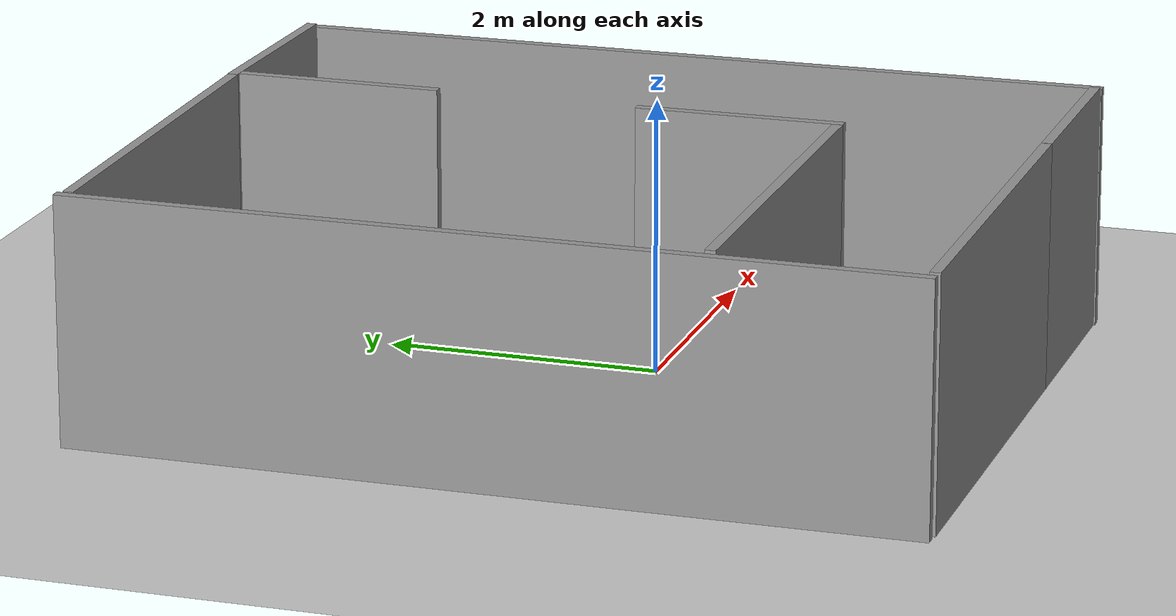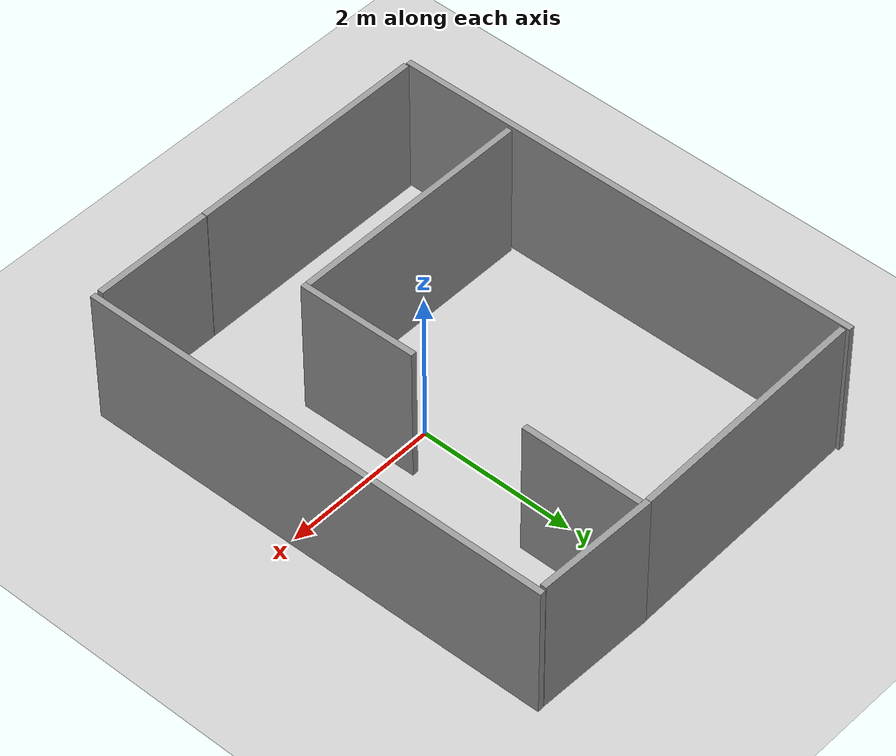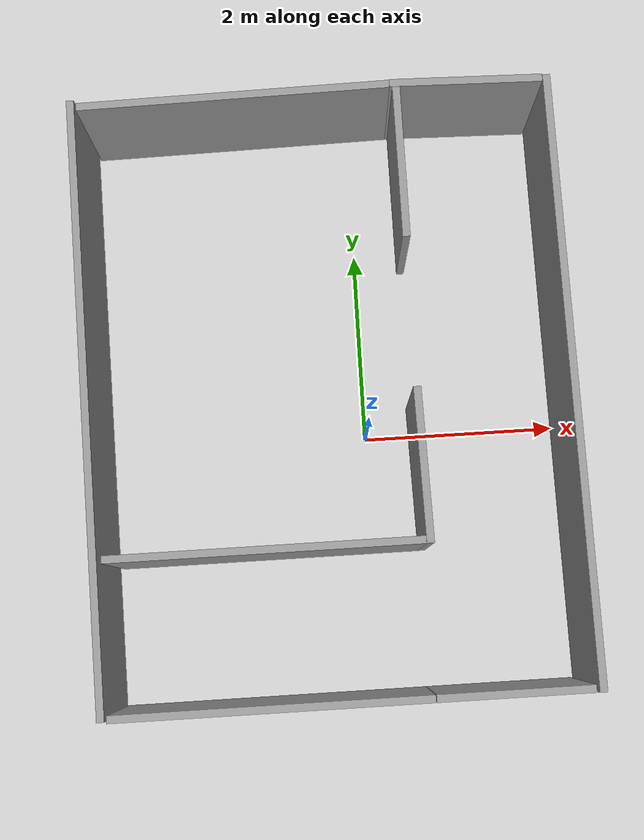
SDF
<sdf version="1.6">
 <world name="default">
  <light name="sun" type="directional">
   <pose>0 0 10 0 -0 0</pose>
   <diffuse>0.8 0.8 0.8 1</diffuse>
   <specular>0.2 0.2 0.2 1</specular>
   <attenuation>
    <range>1000</range>
    <constant>0.9</constant>
    <linear>0.01</linear>
    <quadratic>0.001</quadratic>
   </attenuation>
   <direction>-0.5 0.1 -0.9</direction>
  </light>
  <model name="ground_plane">
   <static>1</static>
   <link name="link">
    <collision name="collision">
     <geometry><plane><normal>0 0 1</normal><size>100 100</size></plane></geometry>
     <surface>
      <contact><collide_bitmask>65535</collide_bitmask></contact>
      <friction><ode><mu>100</mu><mu2>50</mu2></ode></friction>
     </surface>
    </collision>
    <visual name="visual">
     <cast_shadows>0</cast_shadows>
     <geometry><plane><normal>0 0 1</normal><size>100 100</size></plane></geometry>
     <material>
      <script><uri>file://media/materials/scripts/gazebo.material</uri><name>Gazebo/Grey</name></script>
     </material>
    </visual>
   </link>
  </model>
  <gravity>0 0 -9.8</gravity>
  <magnetic_field>6e-06 2.3e-05 -4.2e-05</magnetic_field>
  <atmosphere type="adiabatic"/>
  <physics name="default_physics" default="0" type="ode">
   <max_step_size>0.001</max_step_size>
   <real_time_factor>1</real_time_factor>
   <real_time_update_rate>1000</real_time_update_rate>
  </physics>
  <scene><ambient>0.4 0.4 0.4 1</ambient><background>0.7 0.7 0.7 1</background><shadows>1</shadows></scene>
  <spherical_coordinates>
   <surface_model>EARTH_WGS84</surface_model>
   <latitude_deg>0</latitude_deg>
   <longitude_deg>0</longitude_deg>
   <elevation>0</elevation>
   <heading_deg>0</heading_deg>
  </spherical_coordinates>
  <model name="wall_10ft">
   <link name="link">
    <inertial>
     <mass>1</mass>
     <inertia>
      <ixx>0.166667</ixx>
      <ixy>0</ixy>
      <ixz>0</ixz>
      <iyy>0.166667</iyy>
      <iyz>0</iyz>
      <izz>0.166667</izz>
     </inertia>
    </inertial>
    <visual name="visual">
     <geometry><box><size>3.12591 0.076475 1.8</size></box></geometry>
     <material>
      <script><name>Gazebo/Grey</name><uri>file://media/materials/scripts/gazebo.material</uri></script>
      <shader type="pixel"><normal_map>__default__</normal_map></shader>
      <ambient>0.3 0.3 0.3 1</ambient>
      <diffuse>0.7 0.7 0.7 1</diffuse>
      <specular>0.01 0.01 0.01 1</specular>
      <emissive>0 0 0 1</emissive>
     </material>
    </visual>
    <collision name="collision">
     <geometry><box><size>3.12591 0.076475 1.8</size></box></geometry>
     <surface>
      <friction>
       <ode><mu>1</mu><mu2>1</mu2><fdir1>0 0 0</fdir1><slip1>0</slip1><slip2>0</slip2></ode>
       <torsional>
        <coefficient>1</coefficient>
        <patch_radius>0</patch_radius>
        <surface_radius>0</surface_radius>
        <use_patch_radius>1</use_patch_radius>
        <ode><slip>0</slip></ode>
       </torsional>
      </friction>
      <bounce><restitution_coefficient>0</restitution_coefficient><threshold>1e+06</threshold></bounce>
      <contact>
       <collide_without_contact>0</collide_without_contact>
       <collide_without_contact_bitmask>1</collide_without_contact_bitmask>
       <collide_bitmask>1</collide_bitmask>
       <ode>
        <soft_cfm>0</soft_cfm>
        <soft_erp>0.2</soft_erp>
        <kp>1e+13</kp>
        <kd>1</kd>
        <max_vel>0.01</max_vel>
        <min_depth>0</min_depth>
       </ode>
       <bullet>
        <split_impulse>1</split_impulse>
        <split_impulse_penetration_threshold>-0.01</split_impulse_penetration_threshold>
        <soft_cfm>0</soft_cfm>
        <soft_erp>0.2</soft_erp>
        <kp>1e+13</kp>
        <kd>1</kd>
       </bullet>
      </contact>
     </surface>
    </collision>
   </link>
   <static>1</static>
   <pose>-1.10016 -2.69124 0.89997 0 -1.9e-05 0.000665</pose>
  </model>
  <model name="wall_5ft">
   <link name="link">
    <inertial>
     <mass>1</mass>
     <inertia>
      <ixx>0.166667</ixx>
      <ixy>0</ixy>
      <ixz>0</ixz>
      <iyy>0.166667</iyy>
      <iyz>0</iyz>
      <izz>0.166667</izz>
     </inertia>
    </inertial>
    <visual name="visual">
     <geometry><box><size>1.524 0.076475 1.8</size></box></geometry>
     <material>
      <script><name>Gazebo/Grey</name><uri>file://media/materials/scripts/gazebo.material</uri></script>
      <shader type="pixel"><normal_map>__default__</normal_map></shader>
      <ambient>0.3 0.3 0.3 1</ambient>
      <diffuse>0.7 0.7 0.7 1</diffuse>
      <specular>0.01 0.01 0.01 1</specular>
      <emissive>0 0 0 1</emissive>
     </material>
    </visual>
    <collision name="collision">
     <geometry><box><size>1.524 0.076475 1.8</size></box></geometry>
     <surface>
      <friction>
       <ode><mu>1</mu><mu2>1</mu2><fdir1>0 0 0</fdir1><slip1>0</slip1><slip2>0</slip2></ode>
       <torsional>
        <coefficient>1</coefficient>
        <patch_radius>0</patch_radius>
        <surface_radius>0</surface_radius>
        <use_patch_radius>1</use_patch_radius>
        <ode><slip>0</slip></ode>
       </torsional>
      </friction>
      <bounce><restitution_coefficient>0</restitution_coefficient><threshold>1e+06</threshold></bounce>
      <contact>
       <collide_without_contact>0</collide_without_contact>
       <collide_without_contact_bitmask>1</collide_without_contact_bitmask>
       <collide_bitmask>1</collide_bitmask>
       <ode>
        <soft_cfm>0</soft_cfm>
        <soft_erp>0.2</soft_erp>
        <kp>1e+13</kp>
        <kd>1</kd>
        <max_vel>0.01</max_vel>
        <min_depth>0</min_depth>
       </ode>
       <bullet>
        <split_impulse>1</split_impulse>
        <split_impulse_penetration_threshold>-0.01</split_impulse_penetration_threshold>
        <soft_cfm>0</soft_cfm>
        <soft_erp>0.2</soft_erp>
        <kp>1e+13</kp>
        <kd>1</kd>
       </bullet>
      </contact>
     </surface>
    </collision>
   </link>
   <static>1</static>
   <pose>1.23049 -2.68997 0.900002 -0.00014 5e-06 0.000107</pose>
  </model>
  <model name="wall_10ft_clone">
   <link name="link">
    <inertial>
     <mass>1</mass>
     <inertia>
      <ixx>0.166667</ixx>
      <ixy>0</ixy>
      <ixz>0</ixz>
      <iyy>0.166667</iyy>
      <iyz>0</iyz>
      <izz>0.166667</izz>
     </inertia>
    </inertial>
    <visual name="visual">
     <geometry><box><size>3.12591 0.076475 1.8</size></box></geometry>
     <material>
      <script><name>Gazebo/Grey</name><uri>file://media/materials/scripts/gazebo.material</uri></script>
      <shader type="pixel"><normal_map>__default__</normal_map></shader>
      <ambient>0.3 0.3 0.3 1</ambient>
      <diffuse>0.7 0.7 0.7 1</diffuse>
      <specular>0.01 0.01 0.01 1</specular>
      <emissive>0 0 0 1</emissive>
     </material>
    </visual>
    <collision name="collision">
     <geometry><box><size>3.12591 0.076475 1.8</size></box></geometry>
     <surface>
      <friction>
       <ode><mu>1</mu><mu2>1</mu2><fdir1>0 0 0</fdir1><slip1>0</slip1><slip2>0</slip2></ode>
       <torsional>
        <coefficient>1</coefficient>
        <patch_radius>0</patch_radius>
        <surface_radius>0</surface_radius>
        <use_patch_radius>1</use_patch_radius>
        <ode><slip>0</slip></ode>
       </torsional>
      </friction>
      <bounce><restitution_coefficient>0</restitution_coefficient><threshold>1e+06</threshold></bounce>
      <contact>
       <collide_without_contact>0</collide_without_contact>
       <collide_without_contact_bitmask>1</collide_without_contact_bitmask>
       <collide_bitmask>1</collide_bitmask>
       <ode>
        <soft_cfm>0</soft_cfm>
        <soft_erp>0.2</soft_erp>
        <kp>1e+13</kp>
        <kd>1</kd>
        <max_vel>0.01</max_vel>
        <min_depth>0</min_depth>
       </ode>
       <bullet>
        <split_impulse>1</split_impulse>
        <split_impulse_penetration_threshold>-0.01</split_impulse_penetration_threshold>
        <soft_cfm>0</soft_cfm>
        <soft_erp>0.2</soft_erp>
        <kp>1e+13</kp>
        <kd>1</kd>
       </bullet>
      </contact>
     </surface>
    </collision>
   </link>
   <static>1</static>
   <pose>-1.14299 3.33517 0.899689 0.000222 4.4e-05 0.015106</pose>
  </model>
  <model name="wall_5ft_clone">
   <link name="link">
    <inertial>
     <mass>1</mass>
     <inertia>
      <ixx>0.166667</ixx>
      <ixy>0</ixy>
      <ixz>0</ixz>
      <iyy>0.166667</iyy>
      <iyz>0</iyz>
      <izz>0.166667</izz>
     </inertia>
    </inertial>
    <visual name="visual">
     <geometry><box><size>1.524 0.076475 1.8</size></box></geometry>
     <material>
      <script><name>Gazebo/Grey</name><uri>file://media/materials/scripts/gazebo.material</uri></script>
      <shader type="pixel"><normal_map>__default__</normal_map></shader>
      <ambient>0.3 0.3 0.3 1</ambient>
      <diffuse>0.7 0.7 0.7 1</diffuse>
      <specular>0.01 0.01 0.01 1</specular>
      <emissive>0 0 0 1</emissive>
     </material>
    </visual>
    <collision name="collision">
     <geometry><box><size>1.524 0.076475 1.8</size></box></geometry>
     <surface>
      <friction>
       <ode><mu>1</mu><mu2>1</mu2><fdir1>0 0 0</fdir1><slip1>0</slip1><slip2>0</slip2></ode>
       <torsional>
        <coefficient>1</coefficient>
        <patch_radius>0</patch_radius>
        <surface_radius>0</surface_radius>
        <use_patch_radius>1</use_patch_radius>
        <ode><slip>0</slip></ode>
       </torsional>
      </friction>
      <bounce><restitution_coefficient>0</restitution_coefficient><threshold>1e+06</threshold></bounce>
      <contact>
       <collide_without_contact>0</collide_without_contact>
       <collide_without_contact_bitmask>1</collide_without_contact_bitmask>
       <collide_bitmask>1</collide_bitmask>
       <ode>
        <soft_cfm>0</soft_cfm>
        <soft_erp>0.2</soft_erp>
        <kp>1e+13</kp>
        <kd>1</kd>
        <max_vel>0.01</max_vel>
        <min_depth>0</min_depth>
       </ode>
       <bullet>
        <split_impulse>1</split_impulse>
        <split_impulse_penetration_threshold>-0.01</split_impulse_penetration_threshold>
        <soft_cfm>0</soft_cfm>
        <soft_erp>0.2</soft_erp>
        <kp>1e+13</kp>
        <kd>1</kd>
       </bullet>
      </contact>
     </surface>
    </collision>
   </link>
   <static>1</static>
   <pose>1.18338 3.34504 0.9 -0.000248 -1e-06 -0.024343</pose>
  </model>
  <model name="wall_10ft_clone_clone">
   <link name="link">
    <inertial>
     <mass>1</mass>
     <inertia>
      <ixx>0.166667</ixx>
      <ixy>0</ixy>
      <ixz>0</ixz>
      <iyy>0.166667</iyy>
      <iyz>0</iyz>
      <izz>0.166667</izz>
     </inertia>
    </inertial>
    <visual name="visual">
     <geometry><box><size>3.12591 0.076475 1.8</size></box></geometry>
     <material>
      <script><name>Gazebo/Grey</name><uri>file://media/materials/scripts/gazebo.material</uri></script>
      <shader type="pixel"><normal_map>__default__</normal_map></shader>
      <ambient>0.3 0.3 0.3 1</ambient>
      <diffuse>0.7 0.7 0.7 1</diffuse>
      <specular>0.01 0.01 0.01 1</specular>
      <emissive>0 0 0 1</emissive>
     </material>
    </visual>
    <collision name="collision">
     <geometry><box><size>3.12591 0.076475 1.8</size></box></geometry>
     <surface>
      <friction>
       <ode><mu>1</mu><mu2>1</mu2><fdir1>0 0 0</fdir1><slip1>0</slip1><slip2>0</slip2></ode>
       <torsional>
        <coefficient>1</coefficient>
        <patch_radius>0</patch_radius>
        <surface_radius>0</surface_radius>
        <use_patch_radius>1</use_patch_radius>
        <ode><slip>0</slip></ode>
       </torsional>
      </friction>
      <bounce><restitution_coefficient>0</restitution_coefficient><threshold>1e+06</threshold></bounce>
      <contact>
       <collide_without_contact>0</collide_without_contact>
       <collide_without_contact_bitmask>1</collide_without_contact_bitmask>
       <collide_bitmask>1</collide_bitmask>
       <ode>
        <soft_cfm>0</soft_cfm>
        <soft_erp>0.2</soft_erp>
        <kp>1e+13</kp>
        <kd>1</kd>
        <max_vel>0.01</max_vel>
        <min_depth>0</min_depth>
       </ode>
       <bullet>
        <split_impulse>1</split_impulse>
        <split_impulse_penetration_threshold>-0.01</split_impulse_penetration_threshold>
        <soft_cfm>0</soft_cfm>
        <soft_erp>0.2</soft_erp>
        <kp>1e+13</kp>
        <kd>1</kd>
       </bullet>
      </contact>
     </surface>
    </collision>
   </link>
   <static>1</static>
   <pose>-1.08567 -1.18269 0.899923 9e-06 4.9e-05 0.0003</pose>
  </model>
  <model name="wall_5ft_clone_clone">
   <link name="link">
    <inertial>
     <mass>1</mass>
     <inertia>
      <ixx>0.166667</ixx>
      <ixy>0</ixy>
      <ixz>0</ixz>
      <iyy>0.166667</iyy>
      <iyz>0</iyz>
      <izz>0.166667</izz>
     </inertia>
    </inertial>
    <visual name="visual">
     <geometry><box><size>1.524 0.076475 1.8</size></box></geometry>
     <material>
      <script><name>Gazebo/Grey</name><uri>file://media/materials/scripts/gazebo.material</uri></script>
      <shader type="pixel"><normal_map>__default__</normal_map></shader>
      <ambient>0.3 0.3 0.3 1</ambient>
      <diffuse>0.7 0.7 0.7 1</diffuse>
      <specular>0.01 0.01 0.01 1</specular>
      <emissive>0 0 0 1</emissive>
     </material>
    </visual>
    <collision name="collision">
     <geometry><box><size>1.524 0.076475 1.8</size></box></geometry>
     <surface>
      <friction>
       <ode><mu>1</mu><mu2>1</mu2><fdir1>0 0 0</fdir1><slip1>0</slip1><slip2>0</slip2></ode>
       <torsional>
        <coefficient>1</coefficient>
        <patch_radius>0</patch_radius>
        <surface_radius>0</surface_radius>
        <use_patch_radius>1</use_patch_radius>
        <ode><slip>0</slip></ode>
       </torsional>
      </friction>
      <bounce><restitution_coefficient>0</restitution_coefficient><threshold>1e+06</threshold></bounce>
      <contact>
       <collide_without_contact>0</collide_without_contact>
       <collide_without_contact_bitmask>1</collide_without_contact_bitmask>
       <collide_bitmask>1</collide_bitmask>
       <ode>
        <soft_cfm>0</soft_cfm>
        <soft_erp>0.2</soft_erp>
        <kp>1e+13</kp>
        <kd>1</kd>
        <max_vel>0.01</max_vel>
        <min_depth>0</min_depth>
       </ode>
       <bullet>
        <split_impulse>1</split_impulse>
        <split_impulse_penetration_threshold>-0.01</split_impulse_penetration_threshold>
        <soft_cfm>0</soft_cfm>
        <soft_erp>0.2</soft_erp>
        <kp>1e+13</kp>
        <kd>1</kd>
       </bullet>
      </contact>
     </surface>
    </collision>
   </link>
   <static>1</static>
   <pose>0.503273 -0.456696 0.899971 0 0 -1.55293</pose>
  </model>
  <model name="wall_5ft_clone_clone_clone">
   <link name="link">
    <inertial>
     <mass>1</mass>
     <inertia>
      <ixx>0.166667</ixx>
      <ixy>0</ixy>
      <ixz>0</ixz>
      <iyy>0.166667</iyy>
      <iyz>0</iyz>
      <izz>0.166667</izz>
     </inertia>
    </inertial>
    <visual name="visual">
     <geometry><box><size>1.524 0.076475 1.8</size></box></geometry>
     <material>
      <script><name>Gazebo/Grey</name><uri>file://media/materials/scripts/gazebo.material</uri></script>
      <shader type="pixel"><normal_map>__default__</normal_map></shader>
      <ambient>0.3 0.3 0.3 1</ambient>
      <diffuse>0.7 0.7 0.7 1</diffuse>
      <specular>0.01 0.01 0.01 1</specular>
      <emissive>0 0 0 1</emissive>
     </material>
    </visual>
    <collision name="collision">
     <geometry><box><size>1.524 0.076475 1.8</size></box></geometry>
     <surface>
      <friction>
       <ode><mu>1</mu><mu2>1</mu2><fdir1>0 0 0</fdir1><slip1>0</slip1><slip2>0</slip2></ode>
       <torsional>
        <coefficient>1</coefficient>
        <patch_radius>0</patch_radius>
        <surface_radius>0</surface_radius>
        <use_patch_radius>1</use_patch_radius>
        <ode><slip>0</slip></ode>
       </torsional>
      </friction>
      <bounce><restitution_coefficient>0</restitution_coefficient><threshold>1e+06</threshold></bounce>
      <contact>
       <collide_without_contact>0</collide_without_contact>
       <collide_without_contact_bitmask>1</collide_without_contact_bitmask>
       <collide_bitmask>1</collide_bitmask>
       <ode>
        <soft_cfm>0</soft_cfm>
        <soft_erp>0.2</soft_erp>
        <kp>1e+13</kp>
        <kd>1</kd>
        <max_vel>0.01</max_vel>
        <min_depth>0</min_depth>
       </ode>
       <bullet>
        <split_impulse>1</split_impulse>
        <split_impulse_penetration_threshold>-0.01</split_impulse_penetration_threshold>
        <soft_cfm>0</soft_cfm>
        <soft_erp>0.2</soft_erp>
        <kp>1e+13</kp>
        <kd>1</kd>
       </bullet>
      </contact>
     </surface>
    </collision>
   </link>
   <static>1</static>
   <pose>0.487397 2.56008 0.900007 0.000279 5e-06 -1.56902</pose>
  </model>
  <model name="wall_20ft">
   <link name="link">
    <inertial>
     <mass>1</mass>
     <inertia>
      <ixx>0.166667</ixx>
      <ixy>0</ixy>
      <ixz>0</ixz>
      <iyy>0.166667</iyy>
      <iyz>0</iyz>
      <izz>0.166667</izz>
     </inertia>
    </inertial>
    <visual name="visual">
     <geometry><box><size>0.075575 6.09718 1.8</size></box></geometry>
     <material>
      <script><name>Gazebo/Grey</name><uri>file://media/materials/scripts/gazebo.material</uri></script>
      <shader type="pixel"><normal_map>__default__</normal_map></shader>
      <ambient>0.3 0.3 0.3 1</ambient>
      <diffuse>0.7 0.7 0.7 1</diffuse>
      <specular>0.01 0.01 0.01 1</specular>
      <emissive>0 0 0 1</emissive>
     </material>
    </visual>
    <collision name="collision">
     <geometry><box><size>0.075575 6.09718 1.8</size></box></geometry>
     <surface>
      <friction>
       <ode><mu>1</mu><mu2>1</mu2><fdir1>0 0 0</fdir1><slip1>0</slip1><slip2>0</slip2></ode>
       <torsional>
        <coefficient>1</coefficient>
        <patch_radius>0</patch_radius>
        <surface_radius>0</surface_radius>
        <use_patch_radius>1</use_patch_radius>
        <ode><slip>0</slip></ode>
       </torsional>
      </friction>
      <bounce><restitution_coefficient>0</restitution_coefficient><threshold>1e+06</threshold></bounce>
      <contact>
       <collide_without_contact>0</collide_without_contact>
       <collide_without_contact_bitmask>1</collide_without_contact_bitmask>
       <collide_bitmask>1</collide_bitmask>
       <ode>
        <soft_cfm>0</soft_cfm>
        <soft_erp>0.2</soft_erp>
        <kp>1e+13</kp>
        <kd>1</kd>
        <max_vel>0.01</max_vel>
        <min_depth>0</min_depth>
       </ode>
       <bullet>
        <split_impulse>1</split_impulse>
        <split_impulse_penetration_threshold>-0.01</split_impulse_penetration_threshold>
        <soft_cfm>0</soft_cfm>
        <soft_erp>0.2</soft_erp>
        <kp>1e+13</kp>
        <kd>1</kd>
       </bullet>
      </contact>
     </surface>
    </collision>
   </link>
   <static>1</static>
   <pose>-2.74315 0.33378 0.894041 0.001698 -1.9e-05 0.006258</pose>
  </model>
  <model name="wall_20ft_clone">
   <link name="link">
    <inertial>
     <mass>1</mass>
     <inertia>
      <ixx>0.166667</ixx>
      <ixy>0</ixy>
      <ixz>0</ixz>
      <iyy>0.166667</iyy>
      <iyz>0</iyz>
      <izz>0.166667</izz>
     </inertia>
    </inertial>
    <visual name="visual">
     <geometry><box><size>0.075575 6.09718 1.8</size></box></geometry>
     <material>
      <script><name>Gazebo/Grey</name><uri>file://media/materials/scripts/gazebo.material</uri></script>
      <shader type="pixel"><normal_map>__default__</normal_map></shader>
      <ambient>0.3 0.3 0.3 1</ambient>
      <diffuse>0.7 0.7 0.7 1</diffuse>
      <specular>0.01 0.01 0.01 1</specular>
      <emissive>0 0 0 1</emissive>
     </material>
    </visual>
    <collision name="collision">
     <geometry><box><size>0.075575 6.09718 1.8</size></box></geometry>
     <surface>
      <friction>
       <ode><mu>1</mu><mu2>1</mu2><fdir1>0 0 0</fdir1><slip1>0</slip1><slip2>0</slip2></ode>
       <torsional>
        <coefficient>1</coefficient>
        <patch_radius>0</patch_radius>
        <surface_radius>0</surface_radius>
        <use_patch_radius>1</use_patch_radius>
        <ode><slip>0</slip></ode>
       </torsional>
      </friction>
      <bounce><restitution_coefficient>0</restitution_coefficient><threshold>1e+06</threshold></bounce>
      <contact>
       <collide_without_contact>0</collide_without_contact>
       <collide_without_contact_bitmask>1</collide_without_contact_bitmask>
       <collide_bitmask>1</collide_bitmask>
       <ode>
        <soft_cfm>0</soft_cfm>
        <soft_erp>0.2</soft_erp>
        <kp>1e+13</kp>
        <kd>1</kd>
        <max_vel>0.01</max_vel>
        <min_depth>0</min_depth>
       </ode>
       <bullet>
        <split_impulse>1</split_impulse>
        <split_impulse_penetration_threshold>-0.01</split_impulse_penetration_threshold>
        <soft_cfm>0</soft_cfm>
        <soft_erp>0.2</soft_erp>
        <kp>1e+13</kp>
        <kd>1</kd>
       </bullet>
      </contact>
     </surface>
    </collision>
   </link>
   <static>1</static>
   <pose>2.02517 0.316547 0.875615 -0.001698 1.9e-05 0.011201</pose>
  </model>
 </world>
</sdf>
